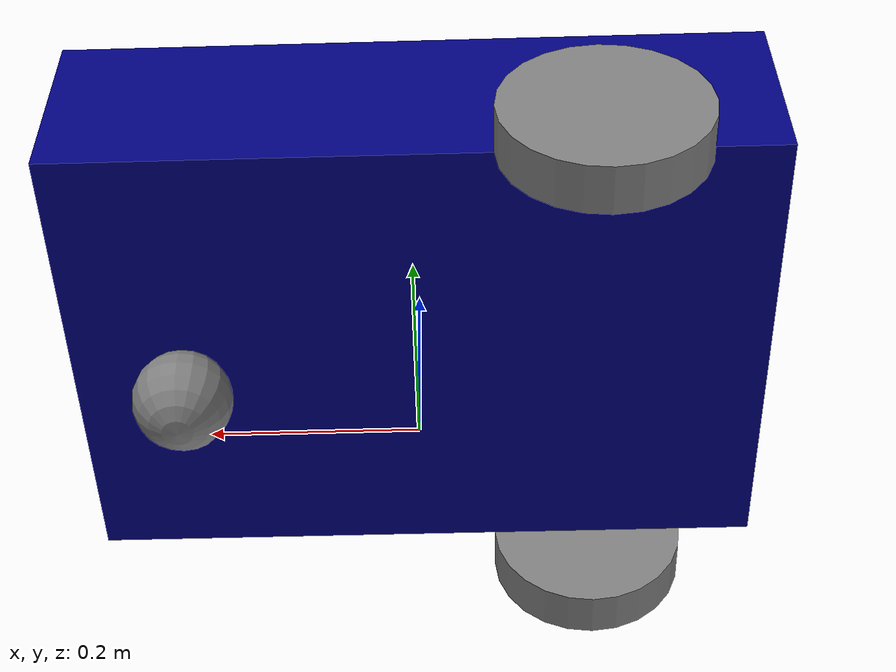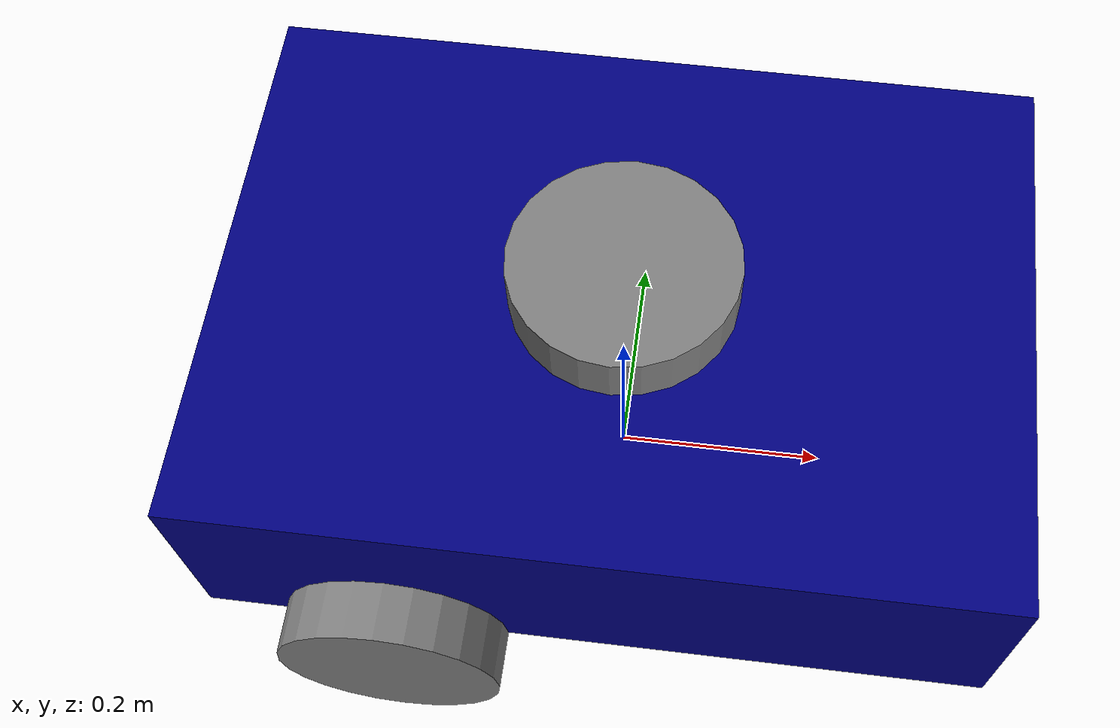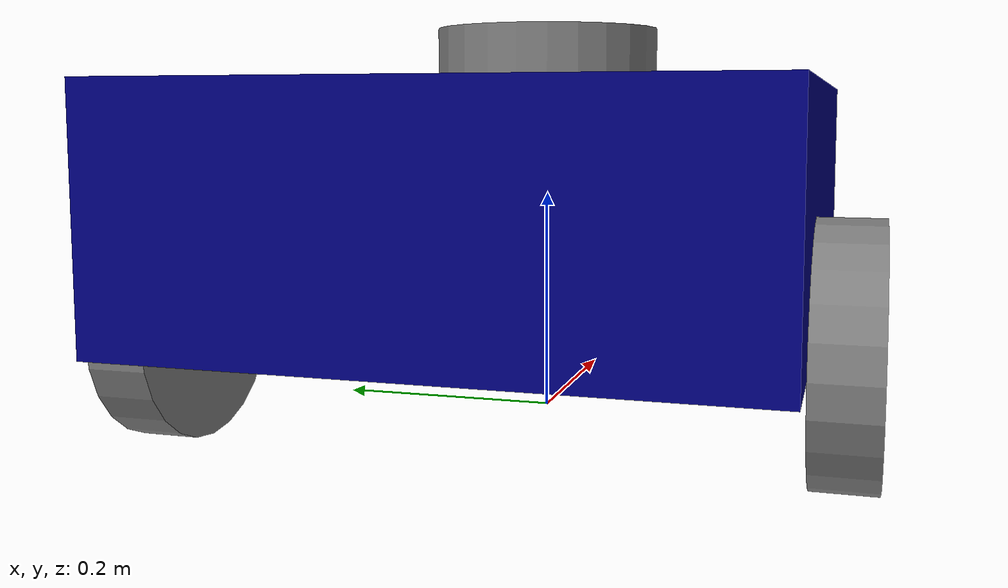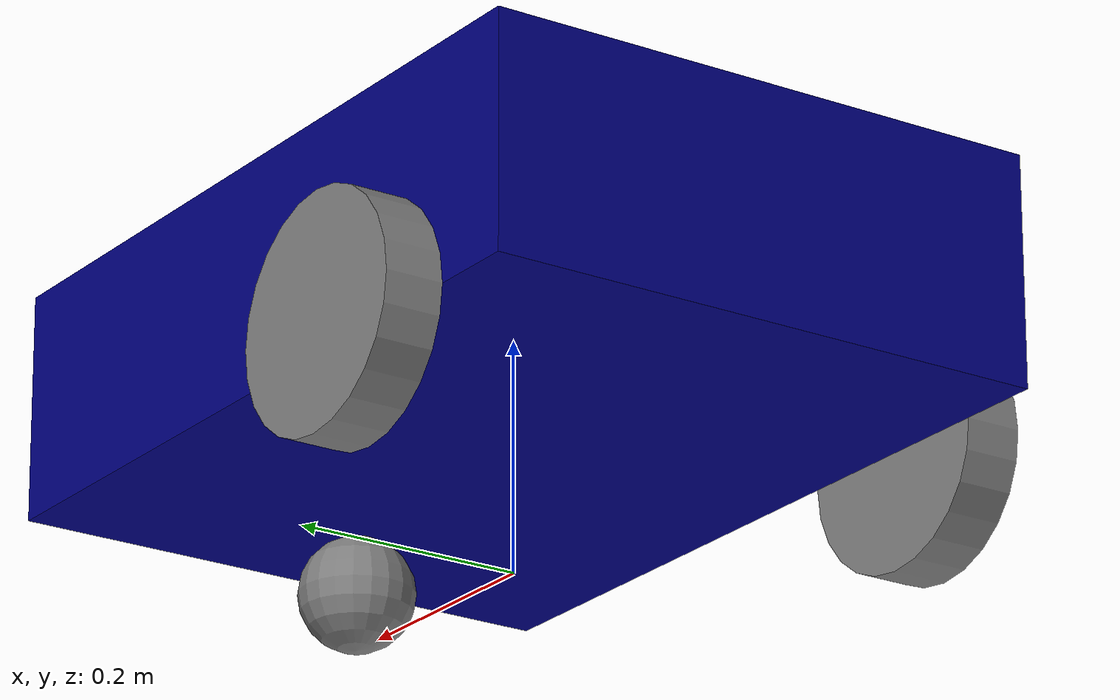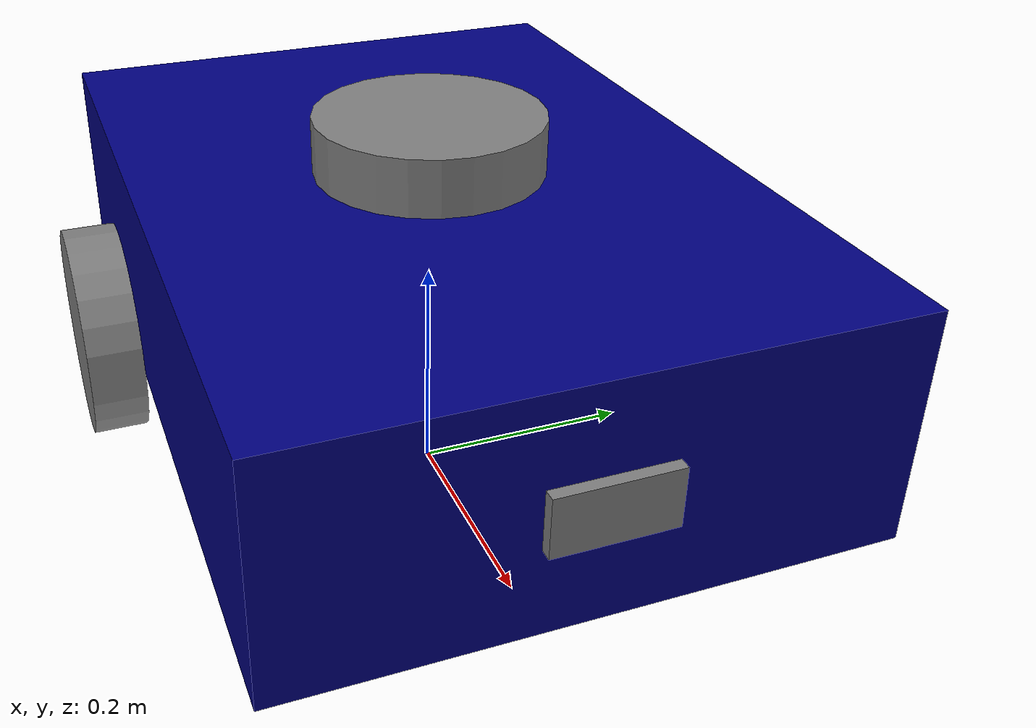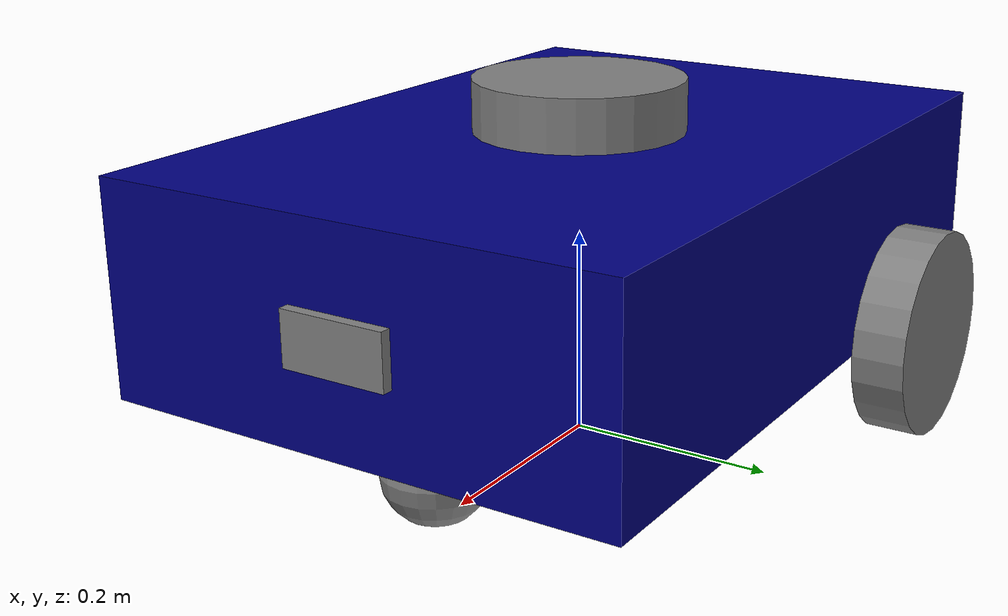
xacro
<?xml version="1.0"?>
<robot name="my_robot" xmlns:xacro="http://www.ros.org/wiki/xacro">

    <xacro:include filename="common_properties.xacro" />
    <xacro:include filename="mobile_base.xacro" />
    <xacro:include filename="mobile_base_gazebo.xacro"/>
    <xacro:include filename="camera.xacro"/>

</robot>

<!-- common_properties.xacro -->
<robot xmlns:xacro="http://www.ros.org/wiki/xacro">

    <material name="blue">
        <color rgba="0 0 0.5 1"/>
    </material>

    <material name="grey">
        <color rgba="0.5 0.5 0.5 1"/>
    </material>

    <xacro:macro name="box_inertia" params="m l w h xyz rpy">
        <inertial>
            <origin xyz="${xyz}" rpy="${rpy}" />
            <mass value="${m}" />
            <inertia ixx="${(m/12) * (h*h + l*l)}" ixy="0" ixz="0"
                     iyy="${(m/12) * (w*w + l*l)}" iyz="0"
                     izz="${(m/12) * (w*w + h*h)}"/>
        </inertial>
    </xacro:macro>

    <xacro:macro name="cylinder_inertia" params="m r h xyz rpy">
        <inertial>
            <origin xyz="${xyz}" rpy="${rpy}" />
            <mass value="${m}" />
            <inertia ixx="${(m/12) * (3*r*r + h*h)}" ixy="0" ixz="0"
                     iyy="${(m/12) * (3*r*r + h*h)}" iyz="0"
                     izz="${(m/2) * (r*r)}"/>
        </inertial>
    </xacro:macro>

    <xacro:macro name="sphere_inertia" params="m r xyz rpy">
        <inertial>
            <origin xyz="${xyz}" rpy="${rpy}"/>
            <mass value="${m}" />
            <inertia ixx="${(2/5) * m * r * r}" ixy="0" ixz="0"
                     iyy="${(2/5) * m * r * r}" iyz="0"
                     izz="${(2/5) * m * r * r}"/>
        </inertial>
    </xacro:macro>

</robot>

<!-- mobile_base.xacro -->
<robot xmlns:xacro="http://www.ros.org/wiki/xacro">

    <xacro:property name="base_length" value="0.7" />
    <xacro:property name="base_width" value="0.5" />
    <xacro:property name="base_height" value="0.2" />
    <xacro:property name="wheel_radius" value="0.1" />
    <xacro:property name="wheel_length" value="0.05" />

    <link name="base_footprint" />

    <link name="base_link">
        <visual>
            <geometry>
                <box size="${base_length} ${base_width} ${base_height}" />
            </geometry>
            <origin xyz="0 0 ${base_height / 2.0}" rpy="0 0 0" />
            <material name="blue" />
        </visual>
        <collision>
            <geometry>
                <box size="${base_length} ${base_width} ${base_height}" />
            </geometry>
            <origin xyz="0 0 ${base_height / 2.0}" rpy="0 0 0" />
        </collision>
        <xacro:box_inertia m="5.0" l="${2*base_length}" w="${2*base_width}" h="${2*base_height}"
                        xyz="0 0 ${base_height / 2.0}" rpy="0 0 0" />
    </link>

    <xacro:macro name="wheel_link" params="prefix">
        <link name="${prefix}_wheel_link">
            <visual>
                <geometry>
                    <cylinder radius="${wheel_radius}" length="${wheel_length}" />
                </geometry>
                <origin xyz="0 0 0" rpy="${pi / 2.0} 0 0" />
                <material name="grey" />
            </visual>
            <collision>
                <geometry>
                    <cylinder radius="${wheel_radius}" length="${wheel_length}" />
                </geometry>
                <origin xyz="0 0 0" rpy="${pi / 2.0} 0 0" />
            </collision>
            <xacro:cylinder_inertia m="1.0" r="${2*wheel_radius}" h="${2*wheel_length}"
                                    xyz="0 0 0" rpy="${pi / 2.0} 0 0" />
        </link>
    </xacro:macro>

    <xacro:wheel_link prefix="right" />
    <xacro:wheel_link prefix="left" />

    <link name="caster_wheel_link">
        <visual>
            <geometry>
                <sphere radius="${wheel_radius / 2.0}" />
            </geometry>
            <origin xyz="0 0 0" rpy="0 0 0" />
            <material name="grey" />
        </visual>
        <collision>
            <geometry>
                <sphere radius="${wheel_radius / 2.0}" />
            </geometry>
            <origin xyz="0 0 0" rpy="0 0 0" />
        </collision>
        <xacro:sphere_inertia m="0.5" r="${2*wheel_radius / 2.0}"
                              xyz="0 0 0" rpy="0 0 0" />
    </link>

    <joint name="base_joint" type="fixed">
        <parent link="base_footprint" />
        <child link="base_link" />
        <origin xyz="0 0 ${wheel_radius}" rpy="0 0 0"/>
    </joint>

    <joint name="base_right_wheel_joint" type="continuous">
        <parent link="base_link" />
        <child link="right_wheel_link" />
        <origin xyz="${-base_length / 4.0} ${-(base_width + wheel_length) / 2.0} 0" rpy="0 0 0" />
        <axis xyz="0 1 0" />
    </joint>

    <joint name="base_left_wheel_joint" type="continuous">
        <parent link="base_link" />
        <child link="left_wheel_link" />
        <origin xyz="${-base_length / 4.0} ${(base_width + wheel_length) / 2.0} 0" rpy="0 0 0" />
        <axis xyz="0 1 0" />
    </joint>

    <joint name="base_caster_wheel_joint" type="fixed">
        <parent link="base_link" />
        <child link="caster_wheel_link" />
        <origin xyz="${base_length / 3.0} 0 ${-wheel_radius / 2.0}" rpy="0 0 0" />
    </joint>

</robot>

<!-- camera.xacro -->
<robot xmlns:xacro="http://www.ros.org/wiki/xacro">

    <xacro:property name="camera_length" value="0.01" />
    <xacro:property name="camera_width" value="0.1" />
    <xacro:property name="camera_height" value="0.05" />

    <link name="camera_link">
        <visual>
            <geometry>
                <box size="${camera_length} ${camera_width} ${camera_height}" />
            </geometry>
            <material name="grey" />
        </visual>
        <collision>
            <geometry>
                <box size="${camera_length} ${camera_width} ${camera_height}" />
            </geometry>
        </collision>
        <xacro:box_inertia m="0.1" l="${camera_length}" w="${camera_width}" h="${camera_height}"
                           xyz="0 0 0" rpy="0 0 0" />
    </link>

    <joint name="base_camera_joint" type="fixed">
        <parent link="base_link" />
        <child link="camera_link" />
        <origin xyz="${(base_length + camera_length) / 2.0} 0 ${base_height / 2.0}" rpy="0 0 0" />
    </joint>

    <link name="camera_link_optical">
    </link>

    <joint name="camera_optical_joint" type="fixed">
        <!-- these values have to be these values otherwise the gazebo camera
            image won't be aligned properly with the frame it is supposedly
            originating from -->
        <origin xyz="0 0 0" rpy="${-pi/2} 0 ${-pi/2}"/>
        <parent link="camera_link"/>
        <child link="camera_link_optical"/>
    </joint>

    <gazebo reference="camera_link">
        <material>Gazebo/Red</material>
        <sensor name="camera_sensor" type="camera">
            <pose>0 0 0 0 0 0</pose>
            <visualize>true</visualize>
            <update_rate>10.0</update_rate>
            <plugin name="camera_controller" filename="libgazebo_ros_camera.so">
                <frame_name>camera_link_optical</frame_name>
            </plugin>
        </sensor>
    </gazebo>

    <link name="laser_frame">
        <visual>
            <geometry>
                <cylinder radius="${wheel_radius}" length="${wheel_length}" /> <!-- Adjust size based on your sensor -->
            </geometry>
            <origin xyz="0 0 0" rpy="0 0 0" /> <!-- Adjust position as needed -->
            <material name="grey" />
        </visual>
        <collision>
            <geometry>
                <cylinder radius="${wheel_radius}" length="${wheel_length}" />
            </geometry>
            <origin xyz="0 0 0.1" rpy="0 0 0" />
        </collision>
    </link>

    <joint name="lidar_joint" type="fixed">
        <parent link="base_link" />
        <child link="laser_frame" />
        <origin xyz="0 0 ${base_height +0.025}" rpy="0 0 0" />
    </joint>

    <gazebo reference="laser_frame">
        <material>Gazebo/Red</material>
        <sensor name="laser" type="ray">
            <pose> 0 0 0 0 0 0 </pose>
            <visualize>true</visualize>
            <update_rate>10</update_rate>
            <ray>
                <scan>
                    <horizontal>
                        <samples>360</samples>
                        <min_angle>-3.14</min_angle>
                        <max_angle>3.14</max_angle>
                    </horizontal>
                </scan>
                <range>
                    <min>0.3</min>
                    <max>12</max>
                </range>
            </ray>
            <plugin name="laser_controller" filename="libgazebo_ros_ray_sensor.so">
                <ros>
                    <argument>~/out:=scan</argument>
                </ros>
                <output_type>sensor_msgs/LaserScan</output_type>
                <frame_name>laser_frame</frame_name>
            </plugin>
        </sensor>
    </gazebo>
</robot>
